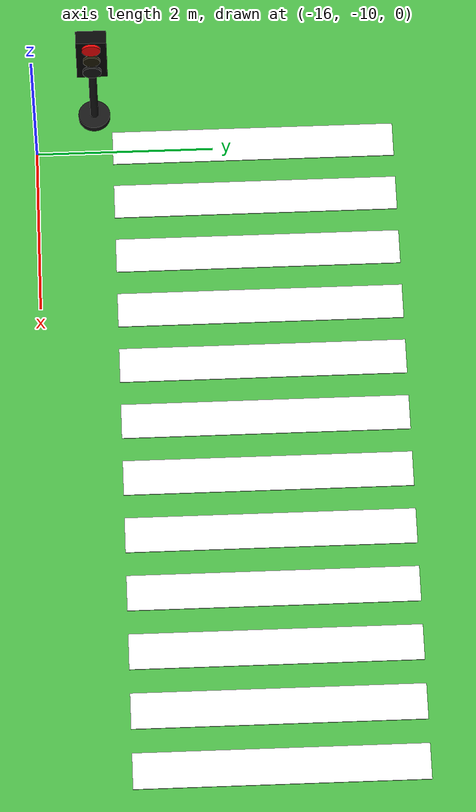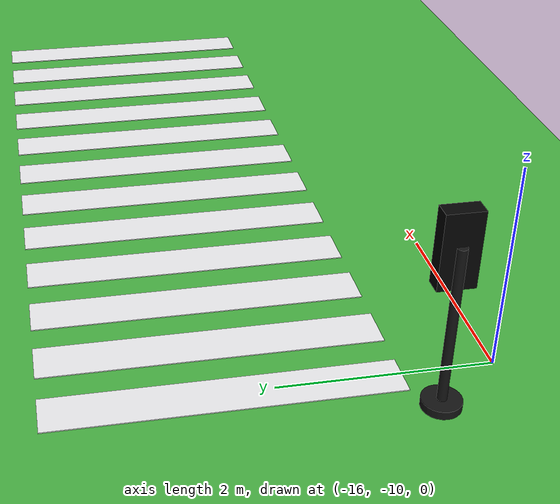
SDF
<sdf version="1.10">
 <world name="city_second">
  <model name="ground_plane">
   <static>true</static>
   <link name="link">
    <collision name="collision">
     <geometry><plane><normal>0 0 1</normal><size>300 300</size></plane></geometry>
    </collision>
    <visual name="visual">
     <geometry><plane><normal>0 0 1</normal><size>300 300</size></plane></geometry>
     <material>
      <ambient>0.280000001 0.689999998 0.25999999 1</ambient>
      <diffuse>0.280000001 0.689999998 0.25999999 1</diffuse>
      <specular>0.0299999993 0.0299999993 0.0299999993 1</specular>
     </material>
    </visual>
    <inertial>
     <mass>1</mass>
     <inertia><ixx>1</ixx><ixy>0</ixy><ixz>0</ixz><iyy>1</iyy><iyz>0</iyz><izz>1</izz></inertia>
    </inertial>
   </link>
  </model>
  <model name="crosswalk_h_1_1_south_7_4">
   <static>true</static>
   <pose>-12.188700000000003 -7.5394199999999998 0.017000000000000001 0 0 0</pose>
   <link name="stripe_1">
    <collision name="collision">
     <geometry><box><size>0.41999999999999998 3.2000000000000002 0.01</size></box></geometry>
    </collision>
    <visual name="visual">
     <geometry><box><size>0.41999999999999998 3.2000000000000002 0.01</size></box></geometry>
     <material>
      <ambient>0.920000017 0.920000017 0.930000007 1</ambient>
      <diffuse>0.920000017 0.920000017 0.930000007 1</diffuse>
      <specular>0.0299999993 0.0299999993 0.0299999993 1</specular>
     </material>
    </visual>
    <pose>-3.8500000000000001 0 0 0 0 0</pose>
    <inertial>
     <mass>1</mass>
     <inertia><ixx>1</ixx><ixy>0</ixy><ixz>0</ixz><iyy>1</iyy><iyz>0</iyz><izz>1</izz></inertia>
    </inertial>
   </link>
   <link name="stripe_2">
    <collision name="collision">
     <geometry><box><size>0.41999999999999998 3.2000000000000002 0.01</size></box></geometry>
    </collision>
    <visual name="visual">
     <geometry><box><size>0.41999999999999998 3.2000000000000002 0.01</size></box></geometry>
     <material>
      <ambient>0.920000017 0.920000017 0.930000007 1</ambient>
      <diffuse>0.920000017 0.920000017 0.930000007 1</diffuse>
      <specular>0.0299999993 0.0299999993 0.0299999993 1</specular>
     </material>
    </visual>
    <pose>-3.1499999999999986 0 0 0 0 0</pose>
    <inertial>
     <mass>1</mass>
     <inertia><ixx>1</ixx><ixy>0</ixy><ixz>0</ixz><iyy>1</iyy><iyz>0</iyz><izz>1</izz></inertia>
    </inertial>
   </link>
   <link name="stripe_3">
    <collision name="collision">
     <geometry><box><size>0.41999999999999998 3.2000000000000002 0.01</size></box></geometry>
    </collision>
    <visual name="visual">
     <geometry><box><size>0.41999999999999998 3.2000000000000002 0.01</size></box></geometry>
     <material>
      <ambient>0.920000017 0.920000017 0.930000007 1</ambient>
      <diffuse>0.920000017 0.920000017 0.930000007 1</diffuse>
      <specular>0.0299999993 0.0299999993 0.0299999993 1</specular>
     </material>
    </visual>
    <pose>-2.4499999999999975 0 0 0 0 0</pose>
    <inertial>
     <mass>1</mass>
     <inertia><ixx>1</ixx><ixy>0</ixy><ixz>0</ixz><iyy>1</iyy><iyz>0</iyz><izz>1</izz></inertia>
    </inertial>
   </link>
   <link name="stripe_4">
    <collision name="collision">
     <geometry><box><size>0.41999999999999998 3.2000000000000002 0.01</size></box></geometry>
    </collision>
    <visual name="visual">
     <geometry><box><size>0.41999999999999998 3.2000000000000002 0.01</size></box></geometry>
     <material>
      <ambient>0.920000017 0.920000017 0.930000007 1</ambient>
      <diffuse>0.920000017 0.920000017 0.930000007 1</diffuse>
      <specular>0.0299999993 0.0299999993 0.0299999993 1</specular>
     </material>
    </visual>
    <pose>-1.7499999999999982 0 0 0 0 0</pose>
    <inertial>
     <mass>1</mass>
     <inertia><ixx>1</ixx><ixy>0</ixy><ixz>0</ixz><iyy>1</iyy><iyz>0</iyz><izz>1</izz></inertia>
    </inertial>
   </link>
   <link name="stripe_5">
    <collision name="collision">
     <geometry><box><size>0.41999999999999998 3.2000000000000002 0.01</size></box></geometry>
    </collision>
    <visual name="visual">
     <geometry><box><size>0.41999999999999998 3.2000000000000002 0.01</size></box></geometry>
     <material>
      <ambient>0.920000017 0.920000017 0.930000007 1</ambient>
      <diffuse>0.920000017 0.920000017 0.930000007 1</diffuse>
      <specular>0.0299999993 0.0299999993 0.0299999993 1</specular>
     </material>
    </visual>
    <pose>-1.0499999999999989 0 0 0 0 0</pose>
    <inertial>
     <mass>1</mass>
     <inertia><ixx>1</ixx><ixy>0</ixy><ixz>0</ixz><iyy>1</iyy><iyz>0</iyz><izz>1</izz></inertia>
    </inertial>
   </link>
   <link name="stripe_6">
    <collision name="collision">
     <geometry><box><size>0.41999999999999998 3.2000000000000002 0.01</size></box></geometry>
    </collision>
    <visual name="visual">
     <geometry><box><size>0.41999999999999998 3.2000000000000002 0.01</size></box></geometry>
     <material>
      <ambient>0.920000017 0.920000017 0.930000007 1</ambient>
      <diffuse>0.920000017 0.920000017 0.930000007 1</diffuse>
      <specular>0.0299999993 0.0299999993 0.0299999993 1</specular>
     </material>
    </visual>
    <pose>-0.34999999999999787 0 0 0 0 0</pose>
    <inertial>
     <mass>1</mass>
     <inertia><ixx>1</ixx><ixy>0</ixy><ixz>0</ixz><iyy>1</iyy><iyz>0</iyz><izz>1</izz></inertia>
    </inertial>
   </link>
   <link name="stripe_7">
    <collision name="collision">
     <geometry><box><size>0.41999999999999998 3.2000000000000002 0.01</size></box></geometry>
    </collision>
    <visual name="visual">
     <geometry><box><size>0.41999999999999998 3.2000000000000002 0.01</size></box></geometry>
     <material>
      <ambient>0.920000017 0.920000017 0.930000007 1</ambient>
      <diffuse>0.920000017 0.920000017 0.930000007 1</diffuse>
      <specular>0.0299999993 0.0299999993 0.0299999993 1</specular>
     </material>
    </visual>
    <pose>0.35000000000000142 0 0 0 0 0</pose>
    <inertial>
     <mass>1</mass>
     <inertia><ixx>1</ixx><ixy>0</ixy><ixz>0</ixz><iyy>1</iyy><iyz>0</iyz><izz>1</izz></inertia>
    </inertial>
   </link>
   <link name="stripe_8">
    <collision name="collision">
     <geometry><box><size>0.41999999999999998 3.2000000000000002 0.01</size></box></geometry>
    </collision>
    <visual name="visual">
     <geometry><box><size>0.41999999999999998 3.2000000000000002 0.01</size></box></geometry>
     <material>
      <ambient>0.920000017 0.920000017 0.930000007 1</ambient>
      <diffuse>0.920000017 0.920000017 0.930000007 1</diffuse>
      <specular>0.0299999993 0.0299999993 0.0299999993 1</specular>
     </material>
    </visual>
    <pose>1.0500000000000025 0 0 0 0 0</pose>
    <inertial>
     <mass>1</mass>
     <inertia><ixx>1</ixx><ixy>0</ixy><ixz>0</ixz><iyy>1</iyy><iyz>0</iyz><izz>1</izz></inertia>
    </inertial>
   </link>
   <link name="stripe_9">
    <collision name="collision">
     <geometry><box><size>0.41999999999999998 3.2000000000000002 0.01</size></box></geometry>
    </collision>
    <visual name="visual">
     <geometry><box><size>0.41999999999999998 3.2000000000000002 0.01</size></box></geometry>
     <material>
      <ambient>0.920000017 0.920000017 0.930000007 1</ambient>
      <diffuse>0.920000017 0.920000017 0.930000007 1</diffuse>
      <specular>0.0299999993 0.0299999993 0.0299999993 1</specular>
     </material>
    </visual>
    <pose>1.7500000000000018 0 0 0 0 0</pose>
    <inertial>
     <mass>1</mass>
     <inertia><ixx>1</ixx><ixy>0</ixy><ixz>0</ixz><iyy>1</iyy><iyz>0</iyz><izz>1</izz></inertia>
    </inertial>
   </link>
   <link name="stripe_10">
    <collision name="collision">
     <geometry><box><size>0.41999999999999998 3.2000000000000002 0.01</size></box></geometry>
    </collision>
    <visual name="visual">
     <geometry><box><size>0.41999999999999998 3.2000000000000002 0.01</size></box></geometry>
     <material>
      <ambient>0.920000017 0.920000017 0.930000007 1</ambient>
      <diffuse>0.920000017 0.920000017 0.930000007 1</diffuse>
      <specular>0.0299999993 0.0299999993 0.0299999993 1</specular>
     </material>
    </visual>
    <pose>2.4500000000000011 0 0 0 0 0</pose>
    <inertial>
     <mass>1</mass>
     <inertia><ixx>1</ixx><ixy>0</ixy><ixz>0</ixz><iyy>1</iyy><iyz>0</iyz><izz>1</izz></inertia>
    </inertial>
   </link>
   <link name="stripe_11">
    <collision name="collision">
     <geometry><box><size>0.41999999999999998 3.2000000000000002 0.01</size></box></geometry>
    </collision>
    <visual name="visual">
     <geometry><box><size>0.41999999999999998 3.2000000000000002 0.01</size></box></geometry>
     <material>
      <ambient>0.920000017 0.920000017 0.930000007 1</ambient>
      <diffuse>0.920000017 0.920000017 0.930000007 1</diffuse>
      <specular>0.0299999993 0.0299999993 0.0299999993 1</specular>
     </material>
    </visual>
    <pose>3.1500000000000021 0 0 0 0 0</pose>
    <inertial>
     <mass>1</mass>
     <inertia><ixx>1</ixx><ixy>0</ixy><ixz>0</ixz><iyy>1</iyy><iyz>0</iyz><izz>1</izz></inertia>
    </inertial>
   </link>
   <link name="stripe_12">
    <collision name="collision">
     <geometry><box><size>0.41999999999999998 3.2000000000000002 0.01</size></box></geometry>
    </collision>
    <visual name="visual">
     <geometry><box><size>0.41999999999999998 3.2000000000000002 0.01</size></box></geometry>
     <material>
      <ambient>0.920000017 0.920000017 0.930000007 1</ambient>
      <diffuse>0.920000017 0.920000017 0.930000007 1</diffuse>
      <specular>0.0299999993 0.0299999993 0.0299999993 1</specular>
     </material>
    </visual>
    <pose>3.8500000000000014 0 0 0 0 0</pose>
    <inertial>
     <mass>1</mass>
     <inertia><ixx>1</ixx><ixy>0</ixy><ixz>0</ixz><iyy>1</iyy><iyz>0</iyz><izz>1</izz></inertia>
    </inertial>
   </link>
  </model>
  <model name="simple_traffic_light_red_east_1">
   <static>true</static>
   <pose>-16.46505069204456 -9.3365546066623484 -1.3877787807814457e-17 0 0 -1.5707999672671711</pose>
   <link name="base">
    <pose>0 0 0.040000000000000001 0 0 0</pose>
    <collision name="collision">
     <geometry>
      <cylinder><radius>0.17999999999999999</radius><length>0.080000000000000002</length></cylinder>
     </geometry>
    </collision>
    <visual name="visual">
     <geometry>
      <cylinder><radius>0.17999999999999999</radius><length>0.080000000000000002</length></cylinder>
     </geometry>
     <material>
      <ambient>0.0799999982 0.0799999982 0.0799999982 1</ambient>
      <diffuse>0.0799999982 0.0799999982 0.0799999982 1</diffuse>
      <specular>0.150000006 0.150000006 0.150000006 1</specular>
      <emissive>0 0 0 1</emissive>
     </material>
    </visual>
    <inertial>
     <mass>1</mass>
     <inertia><ixx>1</ixx><ixy>0</ixy><ixz>0</ixz><iyy>1</iyy><iyz>0</iyz><izz>1</izz></inertia>
    </inertial>
   </link>
   <link name="pole">
    <pose>-5.3290705182007514e-15 3.5527136788005009e-15 0.80000000000000004 0 0 -3.3306690738754696e-16</pose>
    <collision name="collision">
     <geometry>
      <cylinder><radius>0.044999999999999998</radius><length>1.6000000000000001</length></cylinder>
     </geometry>
    </collision>
    <visual name="visual">
     <geometry>
      <cylinder><radius>0.044999999999999998</radius><length>1.6000000000000001</length></cylinder>
     </geometry>
     <material>
      <ambient>0.0799999982 0.0799999982 0.0799999982 1</ambient>
      <diffuse>0.0799999982 0.0799999982 0.0799999982 1</diffuse>
      <specular>0.150000006 0.150000006 0.150000006 1</specular>
      <emissive>0 0 0 1</emissive>
     </material>
    </visual>
    <inertial>
     <mass>1</mass>
     <inertia><ixx>1</ixx><ixy>0</ixy><ixz>0</ixz><iyy>1</iyy><iyz>0</iyz><izz>1</izz></inertia>
    </inertial>
   </link>
   <link name="signal_box">
    <pose>1.2434497875801753e-14 0.089999999999999858 1.5500000000000003 0 0 -3.3306690738754696e-16</pose>
    <collision name="collision">
     <geometry><box><size>0.34000000000000002 0.16 0.71999999999999997</size></box></geometry>
    </collision>
    <visual name="visual">
     <geometry><box><size>0.34000000000000002 0.16 0.71999999999999997</size></box></geometry>
     <material>
      <ambient>0.0199999996 0.0199999996 0.0199999996 1</ambient>
      <diffuse>0.0199999996 0.0199999996 0.0199999996 1</diffuse>
      <specular>0.150000006 0.150000006 0.150000006 1</specular>
      <emissive>0 0 0 1</emissive>
     </material>
    </visual>
    <inertial>
     <mass>1</mass>
     <inertia><ixx>1</ixx><ixy>0</ixy><ixz>0</ixz><iyy>1</iyy><iyz>0</iyz><izz>1</izz></inertia>
    </inertial>
   </link>
   <link name="red_lens">
    <pose>-3.5527136788005009e-15 0.18099999999999739 1.78 1.5707963267999998 7.8504622930783579e-17 1.3345785898814093e-15</pose>
    <collision name="collision">
     <geometry><cylinder><radius>0.105</radius><length>0.035000000000000003</length></cylinder></geometry>
    </collision>
    <visual name="visual">
     <geometry><cylinder><radius>0.105</radius><length>0.035000000000000003</length></cylinder></geometry>
     <material>
      <ambient>1 0.0199999996 0.0199999996 1</ambient>
      <diffuse>1 0.0199999996 0.0199999996 1</diffuse>
      <specular>0.150000006 0.150000006 0.150000006 1</specular>
      <emissive>1 0.0199999996 0.0199999996 1</emissive>
     </material>
    </visual>
    <inertial>
     <mass>1</mass>
     <inertia><ixx>1</ixx><ixy>0</ixy><ixz>0</ixz><iyy>1</iyy><iyz>0</iyz><izz>1</izz></inertia>
    </inertial>
   </link>
   <link name="yellow_lens">
    <pose>-5.3290705182007514e-15 0.18200000000000216 1.5500000000000003 1.5707963267999998 7.8504622930783579e-17 1.3345785898814093e-15</pose>
    <collision name="collision">
     <geometry>
      <cylinder><radius>0.095000000000000001</radius><length>0.035000000000000003</length></cylinder>
     </geometry>
    </collision>
    <visual name="visual">
     <geometry>
      <cylinder><radius>0.095000000000000001</radius><length>0.035000000000000003</length></cylinder>
     </geometry>
     <material>
      <ambient>0.119999997 0.100000001 0.0199999996 1</ambient>
      <diffuse>0.119999997 0.100000001 0.0199999996 1</diffuse>
      <specular>0.150000006 0.150000006 0.150000006 1</specular>
      <emissive>0 0 0 1</emissive>
     </material>
    </visual>
    <inertial>
     <mass>1</mass>
     <inertia><ixx>1</ixx><ixy>0</ixy><ixz>0</ixz><iyy>1</iyy><iyz>0</iyz><izz>1</izz></inertia>
    </inertial>
   </link>
   <link name="green_lens">
    <pose>5.3290705182007514e-15 0.18300000000000338 1.3199999999999998 1.5707963267999998 7.8504622930783579e-17 1.3345785898814093e-15</pose>
    <collision name="collision">
     <geometry><cylinder><radius>0.105</radius><length>0.035000000000000003</length></cylinder></geometry>
    </collision>
    <visual name="visual">
     <geometry><cylinder><radius>0.105</radius><length>0.035000000000000003</length></cylinder></geometry>
     <material>
      <ambient>0.0799999982 0.0799999982 0.0799999982 1</ambient>
      <diffuse>0.0799999982 0.0799999982 0.0799999982 1</diffuse>
      <specular>0.150000006 0.150000006 0.150000006 1</specular>
      <emissive>0 0 0 1</emissive>
     </material>
    </visual>
    <inertial>
     <mass>1</mass>
     <inertia><ixx>1</ixx><ixy>0</ixy><ixz>0</ixz><iyy>1</iyy><iyz>0</iyz><izz>1</izz></inertia>
    </inertial>
   </link>
  </model>
 </world>
</sdf>
